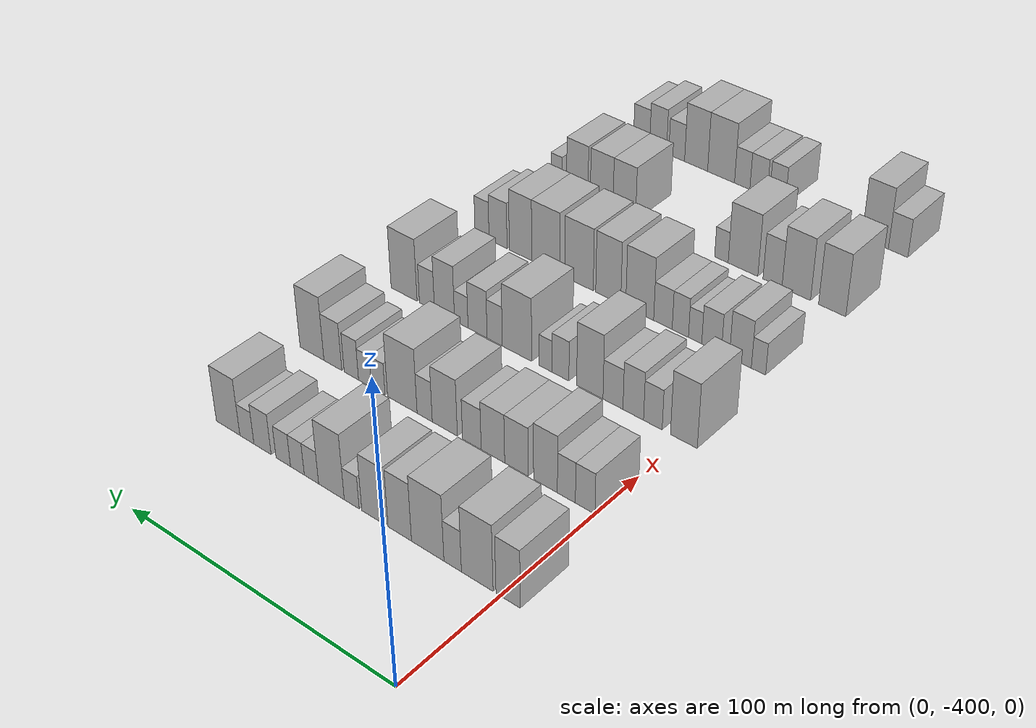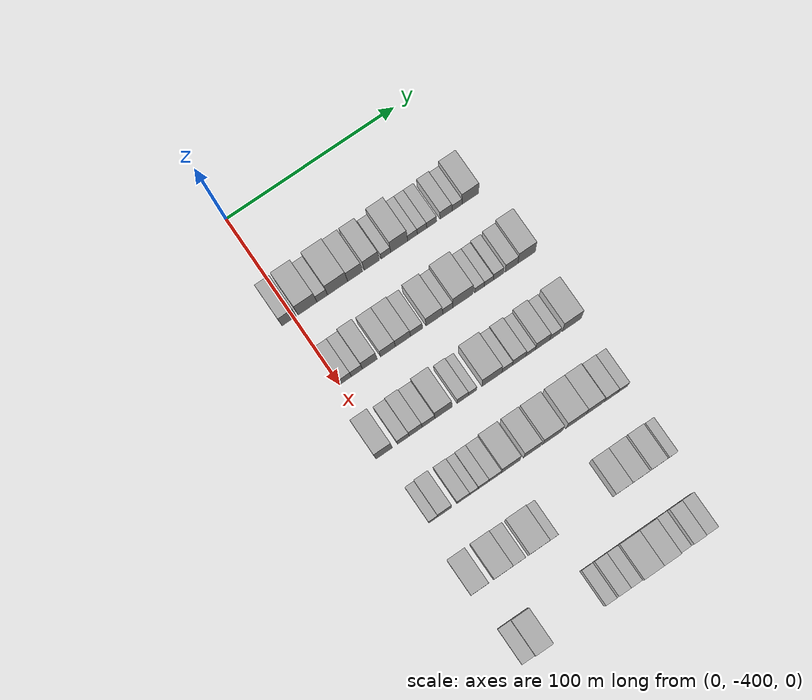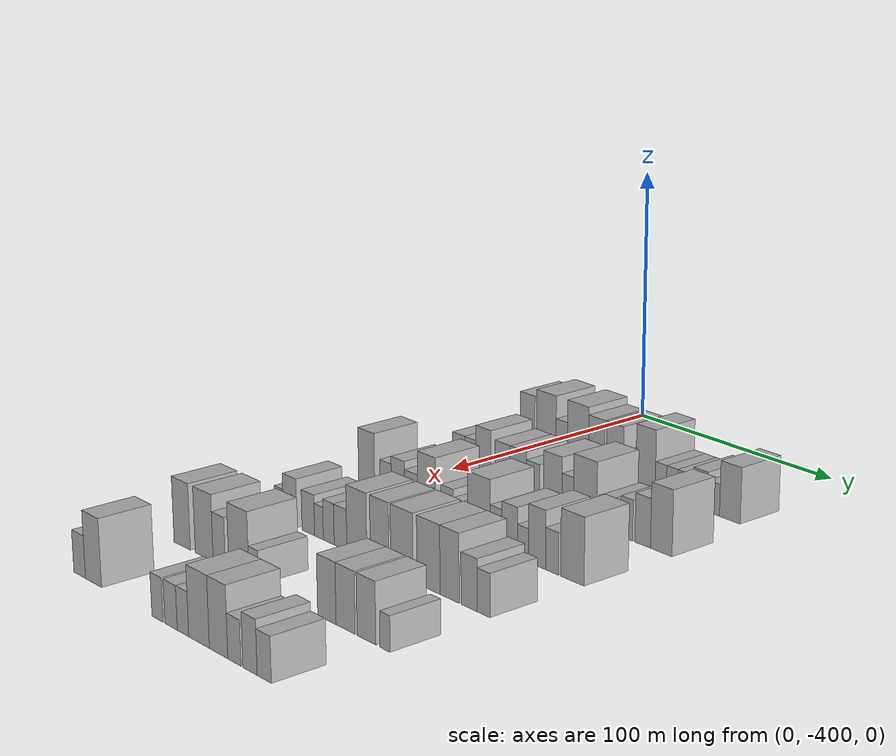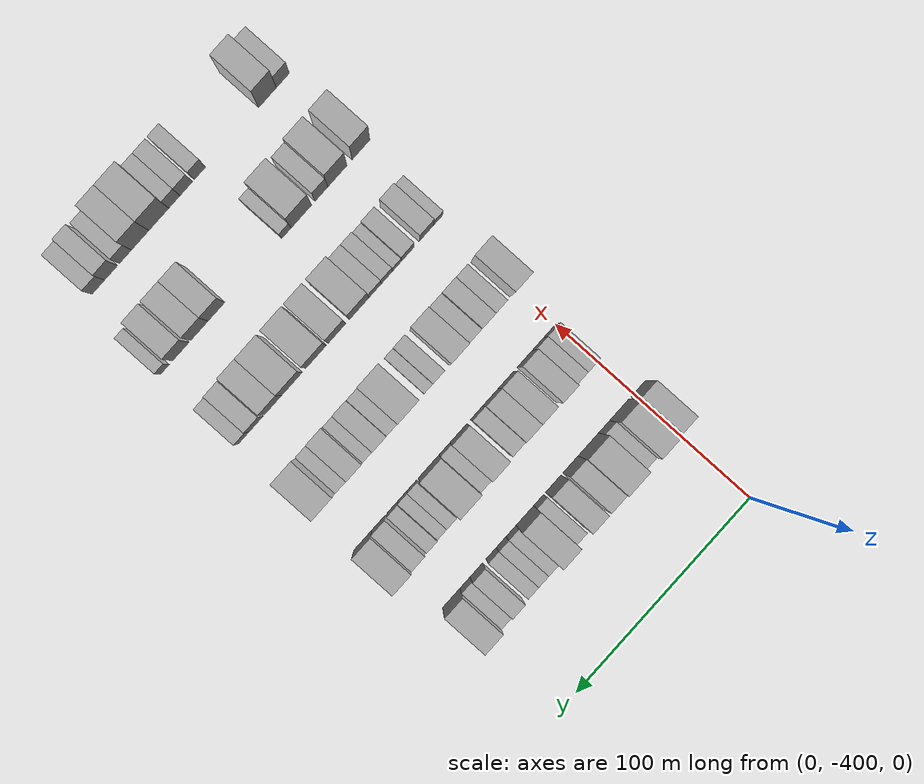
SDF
<sdf version="1.6">
 <world name="default">
  <model name="building_26">
   <static>1</static>
   <pose>50.0000 -402.6620 0 0.000000 0.000000 0.000000</pose>
   <link name="link">
    <pose>0 0 10.50 0 0 0</pose>
    <collision name="collision"><geometry><box><size>20.0000 8.4275 21.0000</size></box></geometry></collision>
    <visual name="visual">
     <cast_shadows>0</cast_shadows>
     <geometry><box><size>20.0000 8.4275 21.0000</size></box></geometry>
     <material>
      <script>
       <uri>model://HANNAS_wall/materials/scripts</uri>
       <uri>model://HANNAS_wall/materials/textures</uri>
       <name>vrc/HANNAS_wall</name>
      </script>
     </material>
    </visual>
   </link>
  </model>
  <model name="building_27">
   <static>1</static>
   <pose>50.0000 -391.8584 0 0.000000 0.000000 0.000000</pose>
   <link name="link">
    <pose>0 0 12.00 0 0 0</pose>
    <collision name="collision"><geometry><box><size>20.0000 11.1799 24.0000</size></box></geometry></collision>
    <visual name="visual">
     <cast_shadows>0</cast_shadows>
     <geometry><box><size>20.0000 11.1799 24.0000</size></box></geometry>
     <material>
      <script>
       <uri>model://HANNAS_wall/materials/scripts</uri>
       <uri>model://HANNAS_wall/materials/textures</uri>
       <name>vrc/HANNAS_wall</name>
      </script>
     </material>
    </visual>
   </link>
  </model>
  <model name="building_28">
   <static>1</static>
   <pose>50.0000 -383.1302 0 0.000000 0.000000 0.000000</pose>
   <link name="link">
    <pose>0 0 7.50 0 0 0</pose>
    <collision name="collision"><geometry><box><size>20.0000 6.2763 15.0000</size></box></geometry></collision>
    <visual name="visual">
     <cast_shadows>0</cast_shadows>
     <geometry><box><size>20.0000 6.2763 15.0000</size></box></geometry>
     <material>
      <script>
       <uri>model://HANNAS_wall/materials/scripts</uri>
       <uri>model://HANNAS_wall/materials/textures</uri>
       <name>vrc/HANNAS_wall</name>
      </script>
     </material>
    </visual>
   </link>
  </model>
  <model name="building_29">
   <static>1</static>
   <pose>50.0000 -374.0557 0 0.000000 0.000000 0.000000</pose>
   <link name="link">
    <pose>0 0 12.00 0 0 0</pose>
    <collision name="collision"><geometry><box><size>20.0000 11.8728 24.0000</size></box></geometry></collision>
    <visual name="visual">
     <cast_shadows>0</cast_shadows>
     <geometry><box><size>20.0000 11.8728 24.0000</size></box></geometry>
     <material>
      <script>
       <uri>model://HANNAS_wall/materials/scripts</uri>
       <uri>model://HANNAS_wall/materials/textures</uri>
       <name>vrc/HANNAS_wall</name>
      </script>
     </material>
    </visual>
   </link>
  </model>
  <model name="building_30">
   <static>1</static>
   <pose>50.0000 -363.7324 0 0.000000 0.000000 0.000000</pose>
   <link name="link">
    <pose>0 0 10.50 0 0 0</pose>
    <collision name="collision"><geometry><box><size>20.0000 8.7739 21.0000</size></box></geometry></collision>
    <visual name="visual">
     <cast_shadows>0</cast_shadows>
     <geometry><box><size>20.0000 8.7739 21.0000</size></box></geometry>
     <material>
      <script>
       <uri>model://HANNAS_wall/materials/scripts</uri>
       <uri>model://HANNAS_wall/materials/textures</uri>
       <name>vrc/HANNAS_wall</name>
      </script>
     </material>
    </visual>
   </link>
  </model>
  <model name="building_31">
   <static>1</static>
   <pose>50.0000 -353.8460 0 0.000000 0.000000 0.000000</pose>
   <link name="link">
    <pose>0 0 10.50 0 0 0</pose>
    <collision name="collision"><geometry><box><size>20.0000 8.9989 21.0000</size></box></geometry></collision>
    <visual name="visual">
     <cast_shadows>0</cast_shadows>
     <geometry><box><size>20.0000 8.9989 21.0000</size></box></geometry>
     <material>
      <script>
       <uri>model://HANNAS_wall/materials/scripts</uri>
       <uri>model://HANNAS_wall/materials/textures</uri>
       <name>vrc/HANNAS_wall</name>
      </script>
     </material>
    </visual>
   </link>
  </model>
  <model name="building_32">
   <static>1</static>
   <pose>50.0000 -345.4574 0 0.000000 0.000000 0.000000</pose>
   <link name="link">
    <pose>0 0 6.00 0 0 0</pose>
    <collision name="collision"><geometry><box><size>20.0000 5.7782 12.0000</size></box></geometry></collision>
    <visual name="visual">
     <cast_shadows>0</cast_shadows>
     <geometry><box><size>20.0000 5.7782 12.0000</size></box></geometry>
     <material>
      <script>
       <uri>model://HANNAS_wall/materials/scripts</uri>
       <uri>model://HANNAS_wall/materials/textures</uri>
       <name>vrc/HANNAS_wall</name>
      </script>
     </material>
    </visual>
   </link>
  </model>
  <model name="building_33">
   <static>1</static>
   <pose>50.0000 -337.5259 0 0.000000 0.000000 0.000000</pose>
   <link name="link">
    <pose>0 0 12.00 0 0 0</pose>
    <collision name="collision"><geometry><box><size>20.0000 10.0848 24.0000</size></box></geometry></collision>
    <visual name="visual">
     <cast_shadows>0</cast_shadows>
     <geometry><box><size>20.0000 10.0848 24.0000</size></box></geometry>
     <material>
      <script>
       <uri>model://HANNAS_wall/materials/scripts</uri>
       <uri>model://HANNAS_wall/materials/textures</uri>
       <name>vrc/HANNAS_wall</name>
      </script>
     </material>
    </visual>
   </link>
  </model>
  <model name="building_34">
   <static>1</static>
   <pose>50.0000 -329.6132 0 0.000000 0.000000 0.000000</pose>
   <link name="link">
    <pose>0 0 6.00 0 0 0</pose>
    <collision name="collision"><geometry><box><size>20.0000 5.7406 12.0000</size></box></geometry></collision>
    <visual name="visual">
     <cast_shadows>0</cast_shadows>
     <geometry><box><size>20.0000 5.7406 12.0000</size></box></geometry>
     <material>
      <script>
       <uri>model://HANNAS_wall/materials/scripts</uri>
       <uri>model://HANNAS_wall/materials/textures</uri>
       <name>vrc/HANNAS_wall</name>
      </script>
     </material>
    </visual>
   </link>
  </model>
  <model name="building_35">
   <static>1</static>
   <pose>50.0000 -323.9547 0 0.000000 0.000000 0.000000</pose>
   <link name="link">
    <pose>0 0 6.00 0 0 0</pose>
    <collision name="collision"><geometry><box><size>20.0000 5.5763 12.0000</size></box></geometry></collision>
    <visual name="visual">
     <cast_shadows>0</cast_shadows>
     <geometry><box><size>20.0000 5.5763 12.0000</size></box></geometry>
     <material>
      <script>
       <uri>model://HANNAS_wall/materials/scripts</uri>
       <uri>model://HANNAS_wall/materials/textures</uri>
       <name>vrc/HANNAS_wall</name>
      </script>
     </material>
    </visual>
   </link>
  </model>
  <model name="building_36">
   <static>1</static>
   <pose>50.0000 -318.2030 0 0.000000 0.000000 0.000000</pose>
   <link name="link">
    <pose>0 0 6.00 0 0 0</pose>
    <collision name="collision"><geometry><box><size>20.0000 5.9271 12.0000</size></box></geometry></collision>
    <visual name="visual">
     <cast_shadows>0</cast_shadows>
     <geometry><box><size>20.0000 5.9271 12.0000</size></box></geometry>
     <material>
      <script>
       <uri>model://HANNAS_wall/materials/scripts</uri>
       <uri>model://HANNAS_wall/materials/textures</uri>
       <name>vrc/HANNAS_wall</name>
      </script>
     </material>
    </visual>
   </link>
  </model>
  <model name="building_37">
   <static>1</static>
   <pose>50.0000 -309.6669 0 0.000000 0.000000 0.000000</pose>
   <link name="link">
    <pose>0 0 7.50 0 0 0</pose>
    <collision name="collision"><geometry><box><size>20.0000 7.1453 15.0000</size></box></geometry></collision>
    <visual name="visual">
     <cast_shadows>0</cast_shadows>
     <geometry><box><size>20.0000 7.1453 15.0000</size></box></geometry>
     <material>
      <script>
       <uri>model://HANNAS_wall/materials/scripts</uri>
       <uri>model://HANNAS_wall/materials/textures</uri>
       <name>vrc/HANNAS_wall</name>
      </script>
     </material>
    </visual>
   </link>
  </model>
  <model name="building_38">
   <static>1</static>
   <pose>50.0000 -303.1367 0 0.000000 0.000000 0.000000</pose>
   <link name="link">
    <pose>0 0 6.00 0 0 0</pose>
    <collision name="collision"><geometry><box><size>20.0000 5.9150 12.0000</size></box></geometry></collision>
    <visual name="visual">
     <cast_shadows>0</cast_shadows>
     <geometry><box><size>20.0000 5.9150 12.0000</size></box></geometry>
     <material>
      <script>
       <uri>model://HANNAS_wall/materials/scripts</uri>
       <uri>model://HANNAS_wall/materials/textures</uri>
       <name>vrc/HANNAS_wall</name>
      </script>
     </material>
    </visual>
   </link>
  </model>
  <model name="building_39">
   <static>1</static>
   <pose>50.0000 -295.1688 0 0.000000 0.000000 0.000000</pose>
   <link name="link">
    <pose>0 0 10.50 0 0 0</pose>
    <collision name="collision"><geometry><box><size>20.0000 10.0208 21.0000</size></box></geometry></collision>
    <visual name="visual">
     <cast_shadows>0</cast_shadows>
     <geometry><box><size>20.0000 10.0208 21.0000</size></box></geometry>
     <material>
      <script>
       <uri>model://HANNAS_wall/materials/scripts</uri>
       <uri>model://HANNAS_wall/materials/textures</uri>
       <name>vrc/HANNAS_wall</name>
      </script>
     </material>
    </visual>
   </link>
  </model>
  <model name="building_160">
   <static>1</static>
   <pose>90.0000 -396.4622 0 0.000000 0.000000 0.000000</pose>
   <link name="link">
    <pose>0 0 7.50 0 0 0</pose>
    <collision name="collision"><geometry><box><size>20.0000 6.9569 15.0000</size></box></geometry></collision>
    <visual name="visual">
     <cast_shadows>0</cast_shadows>
     <geometry><box><size>20.0000 6.9569 15.0000</size></box></geometry>
     <material>
      <script>
       <uri>model://HANNAS_wall/materials/scripts</uri>
       <uri>model://HANNAS_wall/materials/textures</uri>
       <name>vrc/HANNAS_wall</name>
      </script>
     </material>
    </visual>
   </link>
  </model>
  <model name="building_161">
   <static>1</static>
   <pose>90.0000 -389.7453 0 0.000000 0.000000 0.000000</pose>
   <link name="link">
    <pose>0 0 7.50 0 0 0</pose>
    <collision name="collision"><geometry><box><size>20.0000 6.4770 15.0000</size></box></geometry></collision>
    <visual name="visual">
     <cast_shadows>0</cast_shadows>
     <geometry><box><size>20.0000 6.4770 15.0000</size></box></geometry>
     <material>
      <script>
       <uri>model://HANNAS_wall/materials/scripts</uri>
       <uri>model://HANNAS_wall/materials/textures</uri>
       <name>vrc/HANNAS_wall</name>
      </script>
     </material>
    </visual>
   </link>
  </model>
  <model name="building_162">
   <static>1</static>
   <pose>90.0000 -382.1707 0 0.000000 0.000000 0.000000</pose>
   <link name="link">
    <pose>0 0 10.50 0 0 0</pose>
    <collision name="collision"><geometry><box><size>20.0000 8.6722 21.0000</size></box></geometry></collision>
    <visual name="visual">
     <cast_shadows>0</cast_shadows>
     <geometry><box><size>20.0000 8.6722 21.0000</size></box></geometry>
     <material>
      <script>
       <uri>model://HANNAS_wall/materials/scripts</uri>
       <uri>model://HANNAS_wall/materials/textures</uri>
       <name>vrc/HANNAS_wall</name>
      </script>
     </material>
    </visual>
   </link>
  </model>
  <model name="building_163">
   <static>1</static>
   <pose>90.0000 -371.4616 0 0.000000 0.000000 0.000000</pose>
   <link name="link">
    <pose>0 0 9.00 0 0 0</pose>
    <collision name="collision"><geometry><box><size>20.0000 8.7459 18.0000</size></box></geometry></collision>
    <visual name="visual">
     <cast_shadows>0</cast_shadows>
     <geometry><box><size>20.0000 8.7459 18.0000</size></box></geometry>
     <material>
      <script>
       <uri>model://HANNAS_wall/materials/scripts</uri>
       <uri>model://HANNAS_wall/materials/textures</uri>
       <name>vrc/HANNAS_wall</name>
      </script>
     </material>
    </visual>
   </link>
  </model>
  <model name="building_164">
   <static>1</static>
   <pose>90.0000 -362.6313 0 0.000000 0.000000 0.000000</pose>
   <link name="link">
    <pose>0 0 9.00 0 0 0</pose>
    <collision name="collision"><geometry><box><size>20.0000 8.9148 18.0000</size></box></geometry></collision>
    <visual name="visual">
     <cast_shadows>0</cast_shadows>
     <geometry><box><size>20.0000 8.9148 18.0000</size></box></geometry>
     <material>
      <script>
       <uri>model://HANNAS_wall/materials/scripts</uri>
       <uri>model://HANNAS_wall/materials/textures</uri>
       <name>vrc/HANNAS_wall</name>
      </script>
     </material>
    </visual>
   </link>
  </model>
  <model name="building_165">
   <static>1</static>
   <pose>90.0000 -354.5896 0 0.000000 0.000000 0.000000</pose>
   <link name="link">
    <pose>0 0 7.50 0 0 0</pose>
    <collision name="collision"><geometry><box><size>20.0000 7.1685 15.0000</size></box></geometry></collision>
    <visual name="visual">
     <cast_shadows>0</cast_shadows>
     <geometry><box><size>20.0000 7.1685 15.0000</size></box></geometry>
     <material>
      <script>
       <uri>model://HANNAS_wall/materials/scripts</uri>
       <uri>model://HANNAS_wall/materials/textures</uri>
       <name>vrc/HANNAS_wall</name>
      </script>
     </material>
    </visual>
   </link>
  </model>
  <model name="building_166">
   <static>1</static>
   <pose>90.0000 -344.0761 0 0.000000 0.000000 0.000000</pose>
   <link name="link">
    <pose>0 0 10.50 0 0 0</pose>
    <collision name="collision"><geometry><box><size>20.0000 9.8586 21.0000</size></box></geometry></collision>
    <visual name="visual">
     <cast_shadows>0</cast_shadows>
     <geometry><box><size>20.0000 9.8586 21.0000</size></box></geometry>
     <material>
      <script>
       <uri>model://HANNAS_wall/materials/scripts</uri>
       <uri>model://HANNAS_wall/materials/textures</uri>
       <name>vrc/HANNAS_wall</name>
      </script>
     </material>
    </visual>
   </link>
  </model>
  <model name="building_167">
   <static>1</static>
   <pose>90.0000 -336.1162 0 0.000000 0.000000 0.000000</pose>
   <link name="link">
    <pose>0 0 7.50 0 0 0</pose>
    <collision name="collision"><geometry><box><size>20.0000 6.0611 15.0000</size></box></geometry></collision>
    <visual name="visual">
     <cast_shadows>0</cast_shadows>
     <geometry><box><size>20.0000 6.0611 15.0000</size></box></geometry>
     <material>
      <script>
       <uri>model://HANNAS_wall/materials/scripts</uri>
       <uri>model://HANNAS_wall/materials/textures</uri>
       <name>vrc/HANNAS_wall</name>
      </script>
     </material>
    </visual>
   </link>
  </model>
  <model name="building_168">
   <static>1</static>
   <pose>90.0000 -327.0981 0 0.000000 0.000000 0.000000</pose>
   <link name="link">
    <pose>0 0 12.00 0 0 0</pose>
    <collision name="collision"><geometry><box><size>20.0000 11.9751 24.0000</size></box></geometry></collision>
    <visual name="visual">
     <cast_shadows>0</cast_shadows>
     <geometry><box><size>20.0000 11.9751 24.0000</size></box></geometry>
     <material>
      <script>
       <uri>model://HANNAS_wall/materials/scripts</uri>
       <uri>model://HANNAS_wall/materials/textures</uri>
       <name>vrc/HANNAS_wall</name>
      </script>
     </material>
    </visual>
   </link>
  </model>
  <model name="building_169">
   <static>1</static>
   <pose>90.0000 -317.2720 0 0.000000 0.000000 0.000000</pose>
   <link name="link">
    <pose>0 0 6.00 0 0 0</pose>
    <collision name="collision"><geometry><box><size>20.0000 5.6771 12.0000</size></box></geometry></collision>
    <visual name="visual">
     <cast_shadows>0</cast_shadows>
     <geometry><box><size>20.0000 5.6771 12.0000</size></box></geometry>
     <material>
      <script>
       <uri>model://HANNAS_wall/materials/scripts</uri>
       <uri>model://HANNAS_wall/materials/textures</uri>
       <name>vrc/HANNAS_wall</name>
      </script>
     </material>
    </visual>
   </link>
  </model>
  <model name="building_170">
   <static>1</static>
   <pose>90.0000 -311.7578 0 0.000000 0.000000 0.000000</pose>
   <link name="link">
    <pose>0 0 6.00 0 0 0</pose>
    <collision name="collision"><geometry><box><size>20.0000 5.3513 12.0000</size></box></geometry></collision>
    <visual name="visual">
     <cast_shadows>0</cast_shadows>
     <geometry><box><size>20.0000 5.3513 12.0000</size></box></geometry>
     <material>
      <script>
       <uri>model://HANNAS_wall/materials/scripts</uri>
       <uri>model://HANNAS_wall/materials/textures</uri>
       <name>vrc/HANNAS_wall</name>
      </script>
     </material>
    </visual>
   </link>
  </model>
  <model name="building_171">
   <static>1</static>
   <pose>90.0000 -306.0619 0 0.000000 0.000000 0.000000</pose>
   <link name="link">
    <pose>0 0 7.50 0 0 0</pose>
    <collision name="collision"><geometry><box><size>20.0000 6.0405 15.0000</size></box></geometry></collision>
    <visual name="visual">
     <cast_shadows>0</cast_shadows>
     <geometry><box><size>20.0000 6.0405 15.0000</size></box></geometry>
     <material>
      <script>
       <uri>model://HANNAS_wall/materials/scripts</uri>
       <uri>model://HANNAS_wall/materials/textures</uri>
       <name>vrc/HANNAS_wall</name>
      </script>
     </material>
    </visual>
   </link>
  </model>
  <model name="building_172">
   <static>1</static>
   <pose>90.0000 -298.2309 0 0.000000 0.000000 0.000000</pose>
   <link name="link">
    <pose>0 0 9.00 0 0 0</pose>
    <collision name="collision"><geometry><box><size>20.0000 7.6215 18.0000</size></box></geometry></collision>
    <visual name="visual">
     <cast_shadows>0</cast_shadows>
     <geometry><box><size>20.0000 7.6215 18.0000</size></box></geometry>
     <material>
      <script>
       <uri>model://HANNAS_wall/materials/scripts</uri>
       <uri>model://HANNAS_wall/materials/textures</uri>
       <name>vrc/HANNAS_wall</name>
      </script>
     </material>
    </visual>
   </link>
  </model>
  <model name="building_173">
   <static>1</static>
   <pose>90.0000 -289.2455 0 0.000000 0.000000 0.000000</pose>
   <link name="link">
    <pose>0 0 12.00 0 0 0</pose>
    <collision name="collision"><geometry><box><size>20.0000 10.3493 24.0000</size></box></geometry></collision>
    <visual name="visual">
     <cast_shadows>0</cast_shadows>
     <geometry><box><size>20.0000 10.3493 24.0000</size></box></geometry>
     <material>
      <script>
       <uri>model://HANNAS_wall/materials/scripts</uri>
       <uri>model://HANNAS_wall/materials/textures</uri>
       <name>vrc/HANNAS_wall</name>
      </script>
     </material>
    </visual>
   </link>
  </model>
  <model name="building_302">
   <static>1</static>
   <pose>130.0000 -400.9245 0 0.000000 0.000000 0.000000</pose>
   <link name="link">
    <pose>0 0 12.00 0 0 0</pose>
    <collision name="collision"><geometry><box><size>20.0000 9.6177 24.0000</size></box></geometry></collision>
    <visual name="visual">
     <cast_shadows>0</cast_shadows>
     <geometry><box><size>20.0000 9.6177 24.0000</size></box></geometry>
     <material>
      <script>
       <uri>model://HANNAS_wall/materials/scripts</uri>
       <uri>model://HANNAS_wall/materials/textures</uri>
       <name>vrc/HANNAS_wall</name>
      </script>
     </material>
    </visual>
   </link>
  </model>
  <model name="building_303">
   <static>1</static>
   <pose>130.0000 -389.7161 0 0.000000 0.000000 0.000000</pose>
   <link name="link">
    <pose>0 0 7.50 0 0 0</pose>
    <collision name="collision"><geometry><box><size>20.0000 6.7990 15.0000</size></box></geometry></collision>
    <visual name="visual">
     <cast_shadows>0</cast_shadows>
     <geometry><box><size>20.0000 6.7990 15.0000</size></box></geometry>
     <material>
      <script>
       <uri>model://HANNAS_wall/materials/scripts</uri>
       <uri>model://HANNAS_wall/materials/textures</uri>
       <name>vrc/HANNAS_wall</name>
      </script>
     </material>
    </visual>
   </link>
  </model>
  <model name="building_304">
   <static>1</static>
   <pose>130.0000 -382.4973 0 0.000000 0.000000 0.000000</pose>
   <link name="link">
    <pose>0 0 9.00 0 0 0</pose>
    <collision name="collision"><geometry><box><size>20.0000 7.6388 18.0000</size></box></geometry></collision>
    <visual name="visual">
     <cast_shadows>0</cast_shadows>
     <geometry><box><size>20.0000 7.6388 18.0000</size></box></geometry>
     <material>
      <script>
       <uri>model://HANNAS_wall/materials/scripts</uri>
       <uri>model://HANNAS_wall/materials/textures</uri>
       <name>vrc/HANNAS_wall</name>
      </script>
     </material>
    </visual>
   </link>
  </model>
  <model name="building_305">
   <static>1</static>
   <pose>130.0000 -374.9311 0 0.000000 0.000000 0.000000</pose>
   <link name="link">
    <pose>0 0 7.50 0 0 0</pose>
    <collision name="collision"><geometry><box><size>20.0000 7.4935 15.0000</size></box></geometry></collision>
    <visual name="visual">
     <cast_shadows>0</cast_shadows>
     <geometry><box><size>20.0000 7.4935 15.0000</size></box></geometry>
     <material>
      <script>
       <uri>model://HANNAS_wall/materials/scripts</uri>
       <uri>model://HANNAS_wall/materials/textures</uri>
       <name>vrc/HANNAS_wall</name>
      </script>
     </material>
    </visual>
   </link>
  </model>
  <model name="building_306">
   <static>1</static>
   <pose>130.0000 -366.1623 0 0.000000 0.000000 0.000000</pose>
   <link name="link">
    <pose>0 0 12.00 0 0 0</pose>
    <collision name="collision"><geometry><box><size>20.0000 10.0441 24.0000</size></box></geometry></collision>
    <visual name="visual">
     <cast_shadows>0</cast_shadows>
     <geometry><box><size>20.0000 10.0441 24.0000</size></box></geometry>
     <material>
      <script>
       <uri>model://HANNAS_wall/materials/scripts</uri>
       <uri>model://HANNAS_wall/materials/textures</uri>
       <name>vrc/HANNAS_wall</name>
      </script>
     </material>
    </visual>
   </link>
  </model>
  <model name="building_307">
   <static>1</static>
   <pose>130.0000 -354.8022 0 0.000000 0.000000 0.000000</pose>
   <link name="link">
    <pose>0 0 7.50 0 0 0</pose>
    <collision name="collision"><geometry><box><size>20.0000 6.6760 15.0000</size></box></geometry></collision>
    <visual name="visual">
     <cast_shadows>0</cast_shadows>
     <geometry><box><size>20.0000 6.6760 15.0000</size></box></geometry>
     <material>
      <script>
       <uri>model://HANNAS_wall/materials/scripts</uri>
       <uri>model://HANNAS_wall/materials/textures</uri>
       <name>vrc/HANNAS_wall</name>
      </script>
     </material>
    </visual>
   </link>
  </model>
  <model name="building_308">
   <static>1</static>
   <pose>130.0000 -349.0003 0 0.000000 0.000000 0.000000</pose>
   <link name="link">
    <pose>0 0 6.00 0 0 0</pose>
    <collision name="collision"><geometry><box><size>20.0000 4.9278 12.0000</size></box></geometry></collision>
    <visual name="visual">
     <cast_shadows>0</cast_shadows>
     <geometry><box><size>20.0000 4.9278 12.0000</size></box></geometry>
     <material>
      <script>
       <uri>model://HANNAS_wall/materials/scripts</uri>
       <uri>model://HANNAS_wall/materials/textures</uri>
       <name>vrc/HANNAS_wall</name>
      </script>
     </material>
    </visual>
   </link>
  </model>
  <model name="building_309">
   <static>1</static>
   <pose>130.0000 -337.6484 0 0.000000 0.000000 0.000000</pose>
   <link name="link">
    <pose>0 0 12.00 0 0 0</pose>
    <collision name="collision"><geometry><box><size>20.0000 11.7761 24.0000</size></box></geometry></collision>
    <visual name="visual">
     <cast_shadows>0</cast_shadows>
     <geometry><box><size>20.0000 11.7761 24.0000</size></box></geometry>
     <material>
      <script>
       <uri>model://HANNAS_wall/materials/scripts</uri>
       <uri>model://HANNAS_wall/materials/textures</uri>
       <name>vrc/HANNAS_wall</name>
      </script>
     </material>
    </visual>
   </link>
  </model>
  <model name="building_310">
   <static>1</static>
   <pose>130.0000 -328.6327 0 0.000000 0.000000 0.000000</pose>
   <link name="link">
    <pose>0 0 7.50 0 0 0</pose>
    <collision name="collision"><geometry><box><size>20.0000 6.2553 15.0000</size></box></geometry></collision>
    <visual name="visual">
     <cast_shadows>0</cast_shadows>
     <geometry><box><size>20.0000 6.2553 15.0000</size></box></geometry>
     <material>
      <script>
       <uri>model://HANNAS_wall/materials/scripts</uri>
       <uri>model://HANNAS_wall/materials/textures</uri>
       <name>vrc/HANNAS_wall</name>
      </script>
     </material>
    </visual>
   </link>
  </model>
  <model name="building_311">
   <static>1</static>
   <pose>130.0000 -321.5694 0 0.000000 0.000000 0.000000</pose>
   <link name="link">
    <pose>0 0 9.00 0 0 0</pose>
    <collision name="collision"><geometry><box><size>20.0000 7.8712 18.0000</size></box></geometry></collision>
    <visual name="visual">
     <cast_shadows>0</cast_shadows>
     <geometry><box><size>20.0000 7.8712 18.0000</size></box></geometry>
     <material>
      <script>
       <uri>model://HANNAS_wall/materials/scripts</uri>
       <uri>model://HANNAS_wall/materials/textures</uri>
       <name>vrc/HANNAS_wall</name>
      </script>
     </material>
    </visual>
   </link>
  </model>
  <model name="building_312">
   <static>1</static>
   <pose>130.0000 -314.8038 0 0.000000 0.000000 0.000000</pose>
   <link name="link">
    <pose>0 0 6.00 0 0 0</pose>
    <collision name="collision"><geometry><box><size>20.0000 5.6600 12.0000</size></box></geometry></collision>
    <visual name="visual">
     <cast_shadows>0</cast_shadows>
     <geometry><box><size>20.0000 5.6600 12.0000</size></box></geometry>
     <material>
      <script>
       <uri>model://HANNAS_wall/materials/scripts</uri>
       <uri>model://HANNAS_wall/materials/textures</uri>
       <name>vrc/HANNAS_wall</name>
      </script>
     </material>
    </visual>
   </link>
  </model>
  <model name="building_313">
   <static>1</static>
   <pose>130.0000 -307.7222 0 0.000000 0.000000 0.000000</pose>
   <link name="link">
    <pose>0 0 10.50 0 0 0</pose>
    <collision name="collision"><geometry><box><size>20.0000 8.5032 21.0000</size></box></geometry></collision>
    <visual name="visual">
     <cast_shadows>0</cast_shadows>
     <geometry><box><size>20.0000 8.5032 21.0000</size></box></geometry>
     <material>
      <script>
       <uri>model://HANNAS_wall/materials/scripts</uri>
       <uri>model://HANNAS_wall/materials/textures</uri>
       <name>vrc/HANNAS_wall</name>
      </script>
     </material>
    </visual>
   </link>
  </model>
  <model name="building_314">
   <static>1</static>
   <pose>130.0000 -300.2400 0 0.000000 0.000000 0.000000</pose>
   <link name="link">
    <pose>0 0 7.50 0 0 0</pose>
    <collision name="collision"><geometry><box><size>20.0000 6.4612 15.0000</size></box></geometry></collision>
    <visual name="visual">
     <cast_shadows>0</cast_shadows>
     <geometry><box><size>20.0000 6.4612 15.0000</size></box></geometry>
     <material>
      <script>
       <uri>model://HANNAS_wall/materials/scripts</uri>
       <uri>model://HANNAS_wall/materials/textures</uri>
       <name>vrc/HANNAS_wall</name>
      </script>
     </material>
    </visual>
   </link>
  </model>
  <model name="building_315">
   <static>1</static>
   <pose>130.0000 -290.3328 0 0.000000 0.000000 0.000000</pose>
   <link name="link">
    <pose>0 0 12.00 0 0 0</pose>
    <collision name="collision"><geometry><box><size>20.0000 11.3533 24.0000</size></box></geometry></collision>
    <visual name="visual">
     <cast_shadows>0</cast_shadows>
     <geometry><box><size>20.0000 11.3533 24.0000</size></box></geometry>
     <material>
      <script>
       <uri>model://HANNAS_wall/materials/scripts</uri>
       <uri>model://HANNAS_wall/materials/textures</uri>
       <name>vrc/HANNAS_wall</name>
      </script>
     </material>
    </visual>
   </link>
  </model>
  <model name="building_442">
   <static>1</static>
   <pose>170.0000 -399.5380 0 0.000000 0.000000 0.000000</pose>
   <link name="link">
    <pose>0 0 6.00 0 0 0</pose>
    <collision name="collision"><geometry><box><size>20.0000 5.2277 12.0000</size></box></geometry></collision>
    <visual name="visual">
     <cast_shadows>0</cast_shadows>
     <geometry><box><size>20.0000 5.2277 12.0000</size></box></geometry>
     <material>
      <script>
       <uri>model://HANNAS_wall/materials/scripts</uri>
       <uri>model://HANNAS_wall/materials/textures</uri>
       <name>vrc/HANNAS_wall</name>
      </script>
     </material>
    </visual>
   </link>
  </model>
  <model name="building_443">
   <static>1</static>
   <pose>170.0000 -392.8716 0 0.000000 0.000000 0.000000</pose>
   <link name="link">
    <pose>0 0 9.00 0 0 0</pose>
    <collision name="collision"><geometry><box><size>20.0000 8.1052 18.0000</size></box></geometry></collision>
    <visual name="visual">
     <cast_shadows>0</cast_shadows>
     <geometry><box><size>20.0000 8.1052 18.0000</size></box></geometry>
     <material>
      <script>
       <uri>model://HANNAS_wall/materials/scripts</uri>
       <uri>model://HANNAS_wall/materials/textures</uri>
       <name>vrc/HANNAS_wall</name>
      </script>
     </material>
    </visual>
   </link>
  </model>
  <model name="building_444">
   <static>1</static>
   <pose>170.0000 -382.1085 0 0.000000 0.000000 0.000000</pose>
   <link name="link">
    <pose>0 0 7.50 0 0 0</pose>
    <collision name="collision"><geometry><box><size>20.0000 7.4211 15.0000</size></box></geometry></collision>
    <visual name="visual">
     <cast_shadows>0</cast_shadows>
     <geometry><box><size>20.0000 7.4211 15.0000</size></box></geometry>
     <material>
      <script>
       <uri>model://HANNAS_wall/materials/scripts</uri>
       <uri>model://HANNAS_wall/materials/textures</uri>
       <name>vrc/HANNAS_wall</name>
      </script>
     </material>
    </visual>
   </link>
  </model>
  <model name="building_445">
   <static>1</static>
   <pose>170.0000 -375.8710 0 0.000000 0.000000 0.000000</pose>
   <link name="link">
    <pose>0 0 6.00 0 0 0</pose>
    <collision name="collision"><geometry><box><size>20.0000 5.0539 12.0000</size></box></geometry></collision>
    <visual name="visual">
     <cast_shadows>0</cast_shadows>
     <geometry><box><size>20.0000 5.0539 12.0000</size></box></geometry>
     <material>
      <script>
       <uri>model://HANNAS_wall/materials/scripts</uri>
       <uri>model://HANNAS_wall/materials/textures</uri>
       <name>vrc/HANNAS_wall</name>
      </script>
     </material>
    </visual>
   </link>
  </model>
  <model name="building_446">
   <static>1</static>
   <pose>170.0000 -370.2113 0 0.000000 0.000000 0.000000</pose>
   <link name="link">
    <pose>0 0 7.50 0 0 0</pose>
    <collision name="collision"><geometry><box><size>20.0000 6.2655 15.0000</size></box></geometry></collision>
    <visual name="visual">
     <cast_shadows>0</cast_shadows>
     <geometry><box><size>20.0000 6.2655 15.0000</size></box></geometry>
     <material>
      <script>
       <uri>model://HANNAS_wall/materials/scripts</uri>
       <uri>model://HANNAS_wall/materials/textures</uri>
       <name>vrc/HANNAS_wall</name>
      </script>
     </material>
    </visual>
   </link>
  </model>
  <model name="building_447">
   <static>1</static>
   <pose>170.0000 -363.4697 0 0.000000 0.000000 0.000000</pose>
   <link name="link">
    <pose>0 0 7.50 0 0 0</pose>
    <collision name="collision"><geometry><box><size>20.0000 7.2179 15.0000</size></box></geometry></collision>
    <visual name="visual">
     <cast_shadows>0</cast_shadows>
     <geometry><box><size>20.0000 7.2179 15.0000</size></box></geometry>
     <material>
      <script>
       <uri>model://HANNAS_wall/materials/scripts</uri>
       <uri>model://HANNAS_wall/materials/textures</uri>
       <name>vrc/HANNAS_wall</name>
      </script>
     </material>
    </visual>
   </link>
  </model>
  <model name="building_448">
   <static>1</static>
   <pose>170.0000 -354.3220 0 0.000000 0.000000 0.000000</pose>
   <link name="link">
    <pose>0 0 12.00 0 0 0</pose>
    <collision name="collision"><geometry><box><size>20.0000 11.0775 24.0000</size></box></geometry></collision>
    <visual name="visual">
     <cast_shadows>0</cast_shadows>
     <geometry><box><size>20.0000 11.0775 24.0000</size></box></geometry>
     <material>
      <script>
       <uri>model://HANNAS_wall/materials/scripts</uri>
       <uri>model://HANNAS_wall/materials/textures</uri>
       <name>vrc/HANNAS_wall</name>
      </script>
     </material>
    </visual>
   </link>
  </model>
  <model name="building_449">
   <static>1</static>
   <pose>170.0000 -341.7251 0 0.000000 0.000000 0.000000</pose>
   <link name="link">
    <pose>0 0 12.00 0 0 0</pose>
    <collision name="collision"><geometry><box><size>20.0000 10.1164 24.0000</size></box></geometry></collision>
    <visual name="visual">
     <cast_shadows>0</cast_shadows>
     <geometry><box><size>20.0000 10.1164 24.0000</size></box></geometry>
     <material>
      <script>
       <uri>model://HANNAS_wall/materials/scripts</uri>
       <uri>model://HANNAS_wall/materials/textures</uri>
       <name>vrc/HANNAS_wall</name>
      </script>
     </material>
    </visual>
   </link>
  </model>
  <model name="building_450">
   <static>1</static>
   <pose>170.0000 -329.7522 0 0.000000 0.000000 0.000000</pose>
   <link name="link">
    <pose>0 0 12.00 0 0 0</pose>
    <collision name="collision"><geometry><box><size>20.0000 11.8293 24.0000</size></box></geometry></collision>
    <visual name="visual">
     <cast_shadows>0</cast_shadows>
     <geometry><box><size>20.0000 11.8293 24.0000</size></box></geometry>
     <material>
      <script>
       <uri>model://HANNAS_wall/materials/scripts</uri>
       <uri>model://HANNAS_wall/materials/textures</uri>
       <name>vrc/HANNAS_wall</name>
      </script>
     </material>
    </visual>
   </link>
  </model>
  <model name="building_451">
   <static>1</static>
   <pose>170.0000 -315.8978 0 0.000000 0.000000 0.000000</pose>
   <link name="link">
    <pose>0 0 12.00 0 0 0</pose>
    <collision name="collision"><geometry><box><size>20.0000 11.8794 24.0000</size></box></geometry></collision>
    <visual name="visual">
     <cast_shadows>0</cast_shadows>
     <geometry><box><size>20.0000 11.8794 24.0000</size></box></geometry>
     <material>
      <script>
       <uri>model://HANNAS_wall/materials/scripts</uri>
       <uri>model://HANNAS_wall/materials/textures</uri>
       <name>vrc/HANNAS_wall</name>
      </script>
     </material>
    </visual>
   </link>
  </model>
  <model name="building_452">
   <static>1</static>
   <pose>170.0000 -305.1493 0 0.000000 0.000000 0.000000</pose>
   <link name="link">
    <pose>0 0 12.00 0 0 0</pose>
    <collision name="collision"><geometry><box><size>20.0000 9.6176 24.0000</size></box></geometry></collision>
    <visual name="visual">
     <cast_shadows>0</cast_shadows>
     <geometry><box><size>20.0000 9.6176 24.0000</size></box></geometry>
     <material>
      <script>
       <uri>model://HANNAS_wall/materials/scripts</uri>
       <uri>model://HANNAS_wall/materials/textures</uri>
       <name>vrc/HANNAS_wall</name>
      </script>
     </material>
    </visual>
   </link>
  </model>
  <model name="building_453">
   <static>1</static>
   <pose>170.0000 -295.3940 0 0.000000 0.000000 0.000000</pose>
   <link name="link">
    <pose>0 0 9.00 0 0 0</pose>
    <collision name="collision"><geometry><box><size>20.0000 7.8931 18.0000</size></box></geometry></collision>
    <visual name="visual">
     <cast_shadows>0</cast_shadows>
     <geometry><box><size>20.0000 7.8931 18.0000</size></box></geometry>
     <material>
      <script>
       <uri>model://HANNAS_wall/materials/scripts</uri>
       <uri>model://HANNAS_wall/materials/textures</uri>
       <name>vrc/HANNAS_wall</name>
      </script>
     </material>
    </visual>
   </link>
  </model>
  <model name="building_454">
   <static>1</static>
   <pose>170.0000 -288.3424 0 0.000000 0.000000 0.000000</pose>
   <link name="link">
    <pose>0 0 7.50 0 0 0</pose>
    <collision name="collision"><geometry><box><size>20.0000 6.2101 15.0000</size></box></geometry></collision>
    <visual name="visual">
     <cast_shadows>0</cast_shadows>
     <geometry><box><size>20.0000 6.2101 15.0000</size></box></geometry>
     <material>
      <script>
       <uri>model://HANNAS_wall/materials/scripts</uri>
       <uri>model://HANNAS_wall/materials/textures</uri>
       <name>vrc/HANNAS_wall</name>
      </script>
     </material>
    </visual>
   </link>
  </model>
  <model name="building_573">
   <static>1</static>
   <pose>210.0000 -400.1905 0 0.000000 0.000000 0.000000</pose>
   <link name="link">
    <pose>0 0 12.00 0 0 0</pose>
    <collision name="collision"><geometry><box><size>20.0000 10.1627 24.0000</size></box></geometry></collision>
    <visual name="visual">
     <cast_shadows>0</cast_shadows>
     <geometry><box><size>20.0000 10.1627 24.0000</size></box></geometry>
     <material>
      <script>
       <uri>model://HANNAS_wall/materials/scripts</uri>
       <uri>model://HANNAS_wall/materials/textures</uri>
       <name>vrc/HANNAS_wall</name>
      </script>
     </material>
    </visual>
   </link>
  </model>
  <model name="building_574">
   <static>1</static>
   <pose>210.0000 -386.6603 0 0.000000 0.000000 0.000000</pose>
   <link name="link">
    <pose>0 0 12.00 0 0 0</pose>
    <collision name="collision"><geometry><box><size>20.0000 10.8978 24.0000</size></box></geometry></collision>
    <visual name="visual">
     <cast_shadows>0</cast_shadows>
     <geometry><box><size>20.0000 10.8978 24.0000</size></box></geometry>
     <material>
      <script>
       <uri>model://HANNAS_wall/materials/scripts</uri>
       <uri>model://HANNAS_wall/materials/textures</uri>
       <name>vrc/HANNAS_wall</name>
      </script>
     </material>
    </visual>
   </link>
  </model>
  <model name="building_575">
   <static>1</static>
   <pose>210.0000 -377.5353 0 0.000000 0.000000 0.000000</pose>
   <link name="link">
    <pose>0 0 9.00 0 0 0</pose>
    <collision name="collision"><geometry><box><size>20.0000 7.3521 18.0000</size></box></geometry></collision>
    <visual name="visual">
     <cast_shadows>0</cast_shadows>
     <geometry><box><size>20.0000 7.3521 18.0000</size></box></geometry>
     <material>
      <script>
       <uri>model://HANNAS_wall/materials/scripts</uri>
       <uri>model://HANNAS_wall/materials/textures</uri>
       <name>vrc/HANNAS_wall</name>
      </script>
     </material>
    </visual>
   </link>
  </model>
  <model name="building_576">
   <static>1</static>
   <pose>210.0000 -366.0036 0 0.000000 0.000000 0.000000</pose>
   <link name="link">
    <pose>0 0 12.00 0 0 0</pose>
    <collision name="collision"><geometry><box><size>20.0000 11.7112 24.0000</size></box></geometry></collision>
    <visual name="visual">
     <cast_shadows>0</cast_shadows>
     <geometry><box><size>20.0000 11.7112 24.0000</size></box></geometry>
     <material>
      <script>
       <uri>model://HANNAS_wall/materials/scripts</uri>
       <uri>model://HANNAS_wall/materials/textures</uri>
       <name>vrc/HANNAS_wall</name>
      </script>
     </material>
    </visual>
   </link>
  </model>
  <model name="building_577">
   <static>1</static>
   <pose>210.0000 -357.4412 0 0.000000 0.000000 0.000000</pose>
   <link name="link">
    <pose>0 0 6.00 0 0 0</pose>
    <collision name="collision"><geometry><box><size>20.0000 5.4137 12.0000</size></box></geometry></collision>
    <visual name="visual">
     <cast_shadows>0</cast_shadows>
     <geometry><box><size>20.0000 5.4137 12.0000</size></box></geometry>
     <material>
      <script>
       <uri>model://HANNAS_wall/materials/scripts</uri>
       <uri>model://HANNAS_wall/materials/textures</uri>
       <name>vrc/HANNAS_wall</name>
      </script>
     </material>
    </visual>
   </link>
  </model>
  <model name="building_578">
   <static>1</static>
   <pose>210.0000 -317.2187 0 0.000000 0.000000 0.000000</pose>
   <link name="link">
    <pose>0 0 10.50 0 0 0</pose>
    <collision name="collision"><geometry><box><size>20.0000 9.6771 21.0000</size></box></geometry></collision>
    <visual name="visual">
     <cast_shadows>0</cast_shadows>
     <geometry><box><size>20.0000 9.6771 21.0000</size></box></geometry>
     <material>
      <script>
       <uri>model://HANNAS_wall/materials/scripts</uri>
       <uri>model://HANNAS_wall/materials/textures</uri>
       <name>vrc/HANNAS_wall</name>
      </script>
     </material>
    </visual>
   </link>
  </model>
  <model name="building_579">
   <static>1</static>
   <pose>210.0000 -307.4592 0 0.000000 0.000000 0.000000</pose>
   <link name="link">
    <pose>0 0 10.50 0 0 0</pose>
    <collision name="collision"><geometry><box><size>20.0000 9.8418 21.0000</size></box></geometry></collision>
    <visual name="visual">
     <cast_shadows>0</cast_shadows>
     <geometry><box><size>20.0000 9.8418 21.0000</size></box></geometry>
     <material>
      <script>
       <uri>model://HANNAS_wall/materials/scripts</uri>
       <uri>model://HANNAS_wall/materials/textures</uri>
       <name>vrc/HANNAS_wall</name>
      </script>
     </material>
    </visual>
   </link>
  </model>
  <model name="building_580">
   <static>1</static>
   <pose>210.0000 -296.8133 0 0.000000 0.000000 0.000000</pose>
   <link name="link">
    <pose>0 0 10.50 0 0 0</pose>
    <collision name="collision"><geometry><box><size>20.0000 9.4500 21.0000</size></box></geometry></collision>
    <visual name="visual">
     <cast_shadows>0</cast_shadows>
     <geometry><box><size>20.0000 9.4500 21.0000</size></box></geometry>
     <material>
      <script>
       <uri>model://HANNAS_wall/materials/scripts</uri>
       <uri>model://HANNAS_wall/materials/textures</uri>
       <name>vrc/HANNAS_wall</name>
      </script>
     </material>
    </visual>
   </link>
  </model>
  <model name="building_581">
   <static>1</static>
   <pose>210.0000 -287.5786 0 0.000000 0.000000 0.000000</pose>
   <link name="link">
    <pose>0 0 6.00 0 0 0</pose>
    <collision name="collision"><geometry><box><size>20.0000 5.0195 12.0000</size></box></geometry></collision>
    <visual name="visual">
     <cast_shadows>0</cast_shadows>
     <geometry><box><size>20.0000 5.0195 12.0000</size></box></geometry>
     <material>
      <script>
       <uri>model://HANNAS_wall/materials/scripts</uri>
       <uri>model://HANNAS_wall/materials/textures</uri>
       <name>vrc/HANNAS_wall</name>
      </script>
     </material>
    </visual>
   </link>
  </model>
  <model name="building_701">
   <static>1</static>
   <pose>250.0000 -400.1410 0 0.000000 0.000000 0.000000</pose>
   <link name="link">
    <pose>0 0 7.50 0 0 0</pose>
    <collision name="collision"><geometry><box><size>20.0000 7.4277 15.0000</size></box></geometry></collision>
    <visual name="visual">
     <cast_shadows>0</cast_shadows>
     <geometry><box><size>20.0000 7.4277 15.0000</size></box></geometry>
     <material>
      <script>
       <uri>model://HANNAS_wall/materials/scripts</uri>
       <uri>model://HANNAS_wall/materials/textures</uri>
       <name>vrc/HANNAS_wall</name>
      </script>
     </material>
    </visual>
   </link>
  </model>
  <model name="building_702">
   <static>1</static>
   <pose>250.0000 -391.3357 0 0.000000 0.000000 0.000000</pose>
   <link name="link">
    <pose>0 0 12.00 0 0 0</pose>
    <collision name="collision"><geometry><box><size>20.0000 10.1828 24.0000</size></box></geometry></collision>
    <visual name="visual">
     <cast_shadows>0</cast_shadows>
     <geometry><box><size>20.0000 10.1828 24.0000</size></box></geometry>
     <material>
      <script>
       <uri>model://HANNAS_wall/materials/scripts</uri>
       <uri>model://HANNAS_wall/materials/textures</uri>
       <name>vrc/HANNAS_wall</name>
      </script>
     </material>
    </visual>
   </link>
  </model>
  <model name="building_703">
   <static>1</static>
   <pose>250.0000 -352.4643 0 0.000000 0.000000 0.000000</pose>
   <link name="link">
    <pose>0 0 7.50 0 0 0</pose>
    <collision name="collision"><geometry><box><size>20.0000 6.5200 15.0000</size></box></geometry></collision>
    <visual name="visual">
     <cast_shadows>0</cast_shadows>
     <geometry><box><size>20.0000 6.5200 15.0000</size></box></geometry>
     <material>
      <script>
       <uri>model://HANNAS_wall/materials/scripts</uri>
       <uri>model://HANNAS_wall/materials/textures</uri>
       <name>vrc/HANNAS_wall</name>
      </script>
     </material>
    </visual>
   </link>
  </model>
  <model name="building_704">
   <static>1</static>
   <pose>250.0000 -344.6387 0 0.000000 0.000000 0.000000</pose>
   <link name="link">
    <pose>0 0 7.50 0 0 0</pose>
    <collision name="collision"><geometry><box><size>20.0000 7.1313 15.0000</size></box></geometry></collision>
    <visual name="visual">
     <cast_shadows>0</cast_shadows>
     <geometry><box><size>20.0000 7.1313 15.0000</size></box></geometry>
     <material>
      <script>
       <uri>model://HANNAS_wall/materials/scripts</uri>
       <uri>model://HANNAS_wall/materials/textures</uri>
       <name>vrc/HANNAS_wall</name>
      </script>
     </material>
    </visual>
   </link>
  </model>
  <model name="building_705">
   <static>1</static>
   <pose>250.0000 -337.8497 0 0.000000 0.000000 0.000000</pose>
   <link name="link">
    <pose>0 0 7.50 0 0 0</pose>
    <collision name="collision"><geometry><box><size>20.0000 6.4467 15.0000</size></box></geometry></collision>
    <visual name="visual">
     <cast_shadows>0</cast_shadows>
     <geometry><box><size>20.0000 6.4467 15.0000</size></box></geometry>
     <material>
      <script>
       <uri>model://HANNAS_wall/materials/scripts</uri>
       <uri>model://HANNAS_wall/materials/textures</uri>
       <name>vrc/HANNAS_wall</name>
      </script>
     </material>
    </visual>
   </link>
  </model>
  <model name="building_706">
   <static>1</static>
   <pose>250.0000 -328.8876 0 0.000000 0.000000 0.000000</pose>
   <link name="link">
    <pose>0 0 12.00 0 0 0</pose>
    <collision name="collision"><geometry><box><size>20.0000 11.4775 24.0000</size></box></geometry></collision>
    <visual name="visual">
     <cast_shadows>0</cast_shadows>
     <geometry><box><size>20.0000 11.4775 24.0000</size></box></geometry>
     <material>
      <script>
       <uri>model://HANNAS_wall/materials/scripts</uri>
       <uri>model://HANNAS_wall/materials/textures</uri>
       <name>vrc/HANNAS_wall</name>
      </script>
     </material>
    </visual>
   </link>
  </model>
  <model name="building_707">
   <static>1</static>
   <pose>250.0000 -318.1644 0 0.000000 0.000000 0.000000</pose>
   <link name="link">
    <pose>0 0 12.00 0 0 0</pose>
    <collision name="collision"><geometry><box><size>20.0000 9.9690 24.0000</size></box></geometry></collision>
    <visual name="visual">
     <cast_shadows>0</cast_shadows>
     <geometry><box><size>20.0000 9.9690 24.0000</size></box></geometry>
     <material>
      <script>
       <uri>model://HANNAS_wall/materials/scripts</uri>
       <uri>model://HANNAS_wall/materials/textures</uri>
       <name>vrc/HANNAS_wall</name>
      </script>
     </material>
    </visual>
   </link>
  </model>
  <model name="building_708">
   <static>1</static>
   <pose>250.0000 -309.7089 0 0.000000 0.000000 0.000000</pose>
   <link name="link">
    <pose>0 0 7.50 0 0 0</pose>
    <collision name="collision"><geometry><box><size>20.0000 6.9420 15.0000</size></box></geometry></collision>
    <visual name="visual">
     <cast_shadows>0</cast_shadows>
     <geometry><box><size>20.0000 6.9420 15.0000</size></box></geometry>
     <material>
      <script>
       <uri>model://HANNAS_wall/materials/scripts</uri>
       <uri>model://HANNAS_wall/materials/textures</uri>
       <name>vrc/HANNAS_wall</name>
      </script>
     </material>
    </visual>
   </link>
  </model>
  <model name="building_709">
   <static>1</static>
   <pose>250.0000 -301.5039 0 0.000000 0.000000 0.000000</pose>
   <link name="link">
    <pose>0 0 9.00 0 0 0</pose>
    <collision name="collision"><geometry><box><size>20.0000 7.4679 18.0000</size></box></geometry></collision>
    <visual name="visual">
     <cast_shadows>0</cast_shadows>
     <geometry><box><size>20.0000 7.4679 18.0000</size></box></geometry>
     <material>
      <script>
       <uri>model://HANNAS_wall/materials/scripts</uri>
       <uri>model://HANNAS_wall/materials/textures</uri>
       <name>vrc/HANNAS_wall</name>
      </script>
     </material>
    </visual>
   </link>
  </model>
  <model name="building_710">
   <static>1</static>
   <pose>250.0000 -294.1320 0 0.000000 0.000000 0.000000</pose>
   <link name="link">
    <pose>0 0 7.50 0 0 0</pose>
    <collision name="collision"><geometry><box><size>20.0000 7.2759 15.0000</size></box></geometry></collision>
    <visual name="visual">
     <cast_shadows>0</cast_shadows>
     <geometry><box><size>20.0000 7.2759 15.0000</size></box></geometry>
     <material>
      <script>
       <uri>model://HANNAS_wall/materials/scripts</uri>
       <uri>model://HANNAS_wall/materials/textures</uri>
       <name>vrc/HANNAS_wall</name>
      </script>
     </material>
    </visual>
   </link>
  </model>
 </world>
</sdf>
